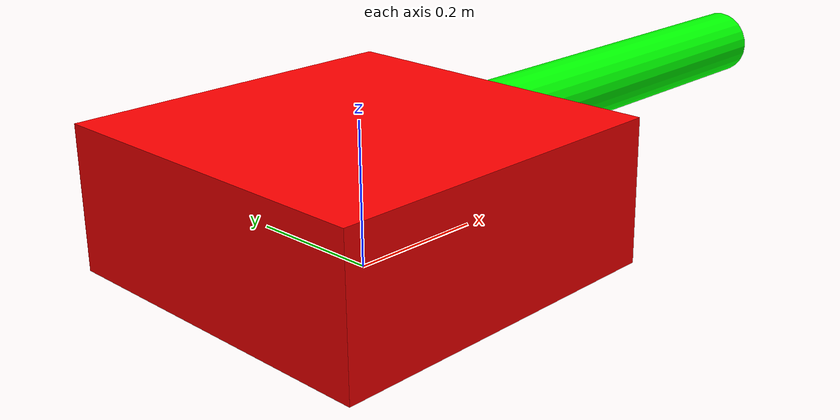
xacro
<?xml version="1.0"?>
<robot xmlns:xacro="http://ros.org/wiki/xacro" name="my_robot">

  <!-- ========== Parameters (Variables) ========== -->
  <!-- These are like variables that we can reuse throughout the file -->
  <!-- This makes it easier to change dimensions without editing multiple places -->

  <!-- base_size: Dimensions of the base (width, depth, height in meters) -->
  <xacro:property name="base_size" value="0.5 0.5 0.2"/>

  <!-- arm_radius: The thickness of the arm cylinder (in meters) -->
  <xacro:property name="arm_radius" value="0.05"/>

  <!-- arm_length: How tall the arm is (in meters) -->
  <xacro:property name="arm_length" value="0.6"/>

  <!--Base Link -->
  <link name="base_link">
    <visual>
      <geometry>
        <box size="${base_size}"/>
      </geometry>
      <origin xyz="0 0 ${0.5 * 0.2}"/>
      <material name="gray">
        <color rgba="1 0 0 1"/>
      </material>
      </visual>
  </link>

  <!--base_link joint connecting arm_link -->

  <joint name="base_to_arm" type="revolute">
  <parent link="base_link"/>
  <child link="arm_link"/>
  <origin xyz="0.25 0 0.15" rpy="0 0 0"/>
  <axis xyz="0 -1 0"/>
  <limit lower="0" upper="${pi/2}" velocity="100" effort="100"/>
  </joint>

  <!-- Arm link -->
  <link name="arm_link">
  <visual>

    <geometry>
      <cylinder radius="${arm_radius}" length="${arm_length}"/>
    </geometry>
    <origin xyz="${arm_length/2} 0 0"  rpy="0 ${pi/2} 0"/>

    <material name="green">
      <color rgba="0 1 0 1"/>
    </material>

  </visual>
  </link>

</robot>
